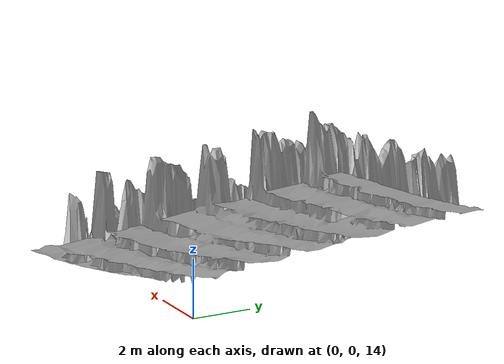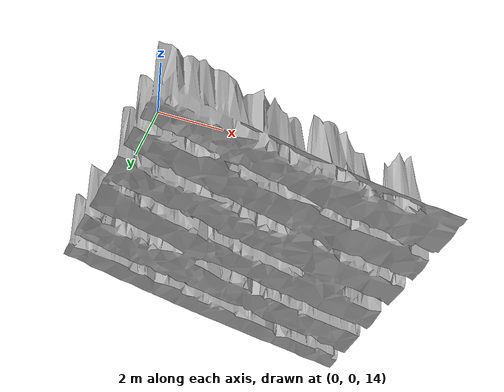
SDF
<?xml version="1.0" ?>
<sdf version="1.10">
    <model name="map_180_20">
        <link name="map_180_20_link">
            <visual name="map_180_20_visual">
                <geometry>
                    <mesh>
                        <uri>meshes/visual/map_180_20.obj</uri>
                    </mesh>
                </geometry>
            </visual>
            <collision name="map_180_20_collision">
                <surface>
                    <friction>
                        <ode>
                            <mu>2.316343837943928</mu>
                            <mu2>2.316343837943928</mu2>
                        </ode>
                        <bullet>
                            <friction>2.316343837943928</friction>
                            <friction2>2.316343837943928</friction2>
                        </bullet>
                    </friction>
                </surface>
                <geometry>
                    <mesh>
                        <uri>meshes/visual/map_180_20.obj</uri>
                    </mesh>
                </geometry>
            </collision>
        </link>
        <static>True</static>
    </model>
</sdf>
